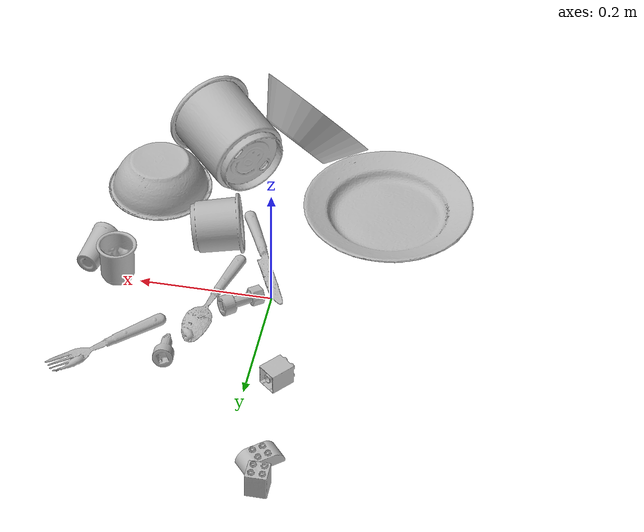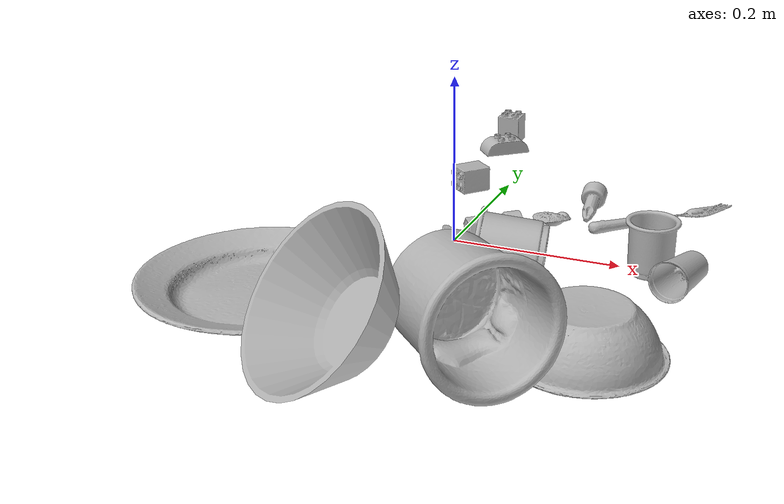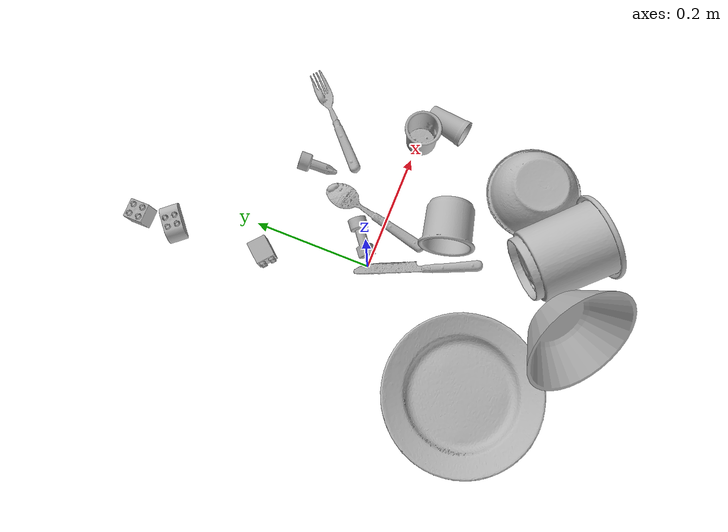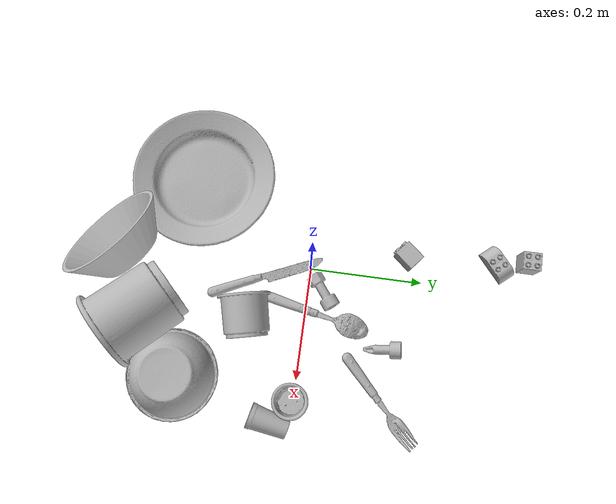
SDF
<sdf version="1.4">
  <world name="default">
    <light name="light1" type="point">
      <pose>0 0 1 0 0 0</pose>
      <diffuse>3 3 3 1</diffuse>
      <specular>3 3 3 1</specular>
    </light>
    <light name="light2" type="point">
      <pose>0 0.5 2 0 0 0</pose>
      <diffuse>1 1 1 1</diffuse>
      <specular>1 1 1 1</specular>
    </light>
    <light name="light3" type="point">
      <pose>0 0.5 2 0 0 0</pose>
      <diffuse>3 3 3 1</diffuse>
      <specular>3 3 3 1</specular>
    </light>
    <scene>
      <ambient>0.7 0.7 0.7</ambient>
    </scene>
    <model name="plate1">
      <link name="link_plate1">
        <collision name="default">
          <geometry>
            <mesh>
              <uri>model://plate/collision_meshes/collision.obj</uri>
              <scale>1.0 1.0 1.0</scale>
            </mesh>
          </geometry>
          <surface>
            <friction>
              <ode>
                <mu>0.5</mu>
                <mu2>0.5</mu2>
              </ode>
            </friction>
          <contact>
        <ode>
            <max_vel>0</max_vel>
            <min_depth>0.0001</min_depth>
            <kp>1e8</kp>
        </ode>
    </contact></surface>
        </collision>
        <visual name="default">
          <geometry>
            <mesh>
              <uri>model://plate/visual_meshes/visual.dae</uri>
              <scale>1.0 1.0 1.0</scale>
            </mesh>
          </geometry>
        </visual>
        <inertial>
          <mass>0.188415065407753</mass>
          <pose>-0.0006044681649655104 0.0002782578521873802 -0.0010561991948634386 0.0022187970116661695 -0.0032254679619122127 0.4526056514331616</pose>
          <inertia>
            <ixx>0.00088140933</ixx>
            <iyy>0.000872979</iyy>
            <izz>0.0017239053</izz>
            <ixy>0</ixy>
            <ixz>0</ixz>
            <iyz>0</iyz>
          </inertia>
        </inertial>
      </link>
      <pose>-0.13903482258319855 -0.21701329946517944 0.013733014464378357 -2.660520522294981e-07 -4.11367360031303e-09 1.2214281183978781</pose>
    </model>
    <model name="cup1">
      <link name="link_cup1">
        <collision name="default">
          <geometry>
            <mesh>
              <uri>model://d_cups/collision_meshes/collision.obj</uri>
              <scale>2.0 2.0 2.0</scale>
            </mesh>
          </geometry>
          <surface>
            <friction>
              <ode>
                <mu>0.5</mu>
                <mu2>0.5</mu2>
              </ode>
            </friction>
          <contact>
        <ode>
            <max_vel>0</max_vel>
            <min_depth>0.0001</min_depth>
            <kp>1e8</kp>
        </ode>
    </contact></surface>
        </collision>
        <visual name="default">
          <geometry>
            <mesh>
              <uri>model://d_cups/visual_meshes/visual.dae</uri>
              <scale>2.0 2.0 2.0</scale>
            </mesh>
          </geometry>
        </visual>
        <inertial>
          <mass>0.39843064546585083</mass>
          <pose>0.0016136104241013527 0.0038234808016568422 -0.004533304367214441 0.24012134810188138 -0.24709791903716813 0.5942561701250738</pose>
          <inertia>
            <ixx>0.0013343208</ixx>
            <iyy>0.001330459</iyy>
            <izz>0.001207787</izz>
            <ixy>0</ixy>
            <ixz>0</ixz>
            <iyz>0</iyz>
          </inertia>
        </inertial>
      </link>
      <pose>0.12071606516838074 -0.2797935903072357 0.065165214240551 -1.4735919056179374 0.2041779603224549 -2.3522221242902552</pose>
    </model>
    <model name="silverware1">
      <link name="link_silverware1">
        <collision name="default">
          <geometry>
            <mesh>
              <uri>model://knife/collision_meshes/collision.obj</uri>
              <scale>1.0 1.0 1.0</scale>
            </mesh>
          </geometry>
          <surface>
            <friction>
              <ode>
                <mu>0.5</mu>
                <mu2>0.5</mu2>
              </ode>
            </friction>
          <contact>
        <ode>
            <max_vel>0</max_vel>
            <min_depth>0.0001</min_depth>
            <kp>1e8</kp>
        </ode>
    </contact></surface>
        </collision>
        <visual name="default">
          <geometry>
            <mesh>
              <uri>model://knife/visual_meshes/visual.dae</uri>
              <scale>1.0 1.0 1.0</scale>
            </mesh>
          </geometry>
        </visual>
        <inertial>
          <mass>0.027211036533117294</mass>
          <pose>-0.02378525771200657 0.0015275125624611974 5.062023410573602e-05 0.0730549860308878 0.01724841828598218 -0.007409817457274567</pose>
          <inertia>
            <ixx>7.723595e-07</ixx>
            <iyy>0.000104540384</iyy>
            <izz>0.00010478913</izz>
            <ixy>0</ixy>
            <ixz>0</ixz>
            <iyz>0</iyz>
          </inertia>
        </inertial>
      </link>
      <pose>0.028284739702939987 -0.0784861296415329 0.007946611382067204 -0.02388006309794294 -0.014542830530056072 1.9867194728653574</pose>
    </model>
    <model name="silverware2">
      <link name="link_silverware2">
        <collision name="default">
          <geometry>
            <mesh>
              <uri>model://fork/collision_meshes/collision.obj</uri>
              <scale>1.0 1.0 1.0</scale>
            </mesh>
          </geometry>
          <surface>
            <friction>
              <ode>
                <mu>0.5</mu>
                <mu2>0.5</mu2>
              </ode>
            </friction>
          <contact>
        <ode>
            <max_vel>0</max_vel>
            <min_depth>0.0001</min_depth>
            <kp>1e8</kp>
        </ode>
    </contact></surface>
        </collision>
        <visual name="default">
          <geometry>
            <mesh>
              <uri>model://fork/visual_meshes/visual.dae</uri>
              <scale>1.0 1.0 1.0</scale>
            </mesh>
          </geometry>
        </visual>
        <inertial>
          <mass>0.01567319966852665</mass>
          <pose>-0.029570044949650764 0.00046588233090005815 0.0003218860656488687 -0.013551693849150472 -0.010977837004960822 0.014453899894816049</pose>
          <inertia>
            <ixx>5.494343e-07</ixx>
            <iyy>4.0918225e-05</iyy>
            <izz>4.1163967e-05</izz>
            <ixy>0</ixy>
            <ixz>0</ixz>
            <iyz>0</iyz>
          </inertia>
        </inertial>
      </link>
      <pose>0.21538907289505005 0.14537551999092102 0.0056793345138430595 -0.17284992149180892 0.02619500162868441 0.7568297845576949</pose>
    </model>
    <model name="silverware3">
      <link name="link_silverware3">
        <collision name="default">
          <geometry>
            <mesh>
              <uri>model://spoon/collision_meshes/collision.obj</uri>
              <scale>1.0 1.0 1.0</scale>
            </mesh>
          </geometry>
          <surface>
            <friction>
              <ode>
                <mu>0.5</mu>
                <mu2>0.5</mu2>
              </ode>
            </friction>
          <contact>
        <ode>
            <max_vel>0</max_vel>
            <min_depth>0.0001</min_depth>
            <kp>1e8</kp>
        </ode>
    </contact></surface>
        </collision>
        <visual name="default">
          <geometry>
            <mesh>
              <uri>model://spoon/visual_meshes/visual.dae</uri>
              <scale>1.0 1.0 1.0</scale>
            </mesh>
          </geometry>
        </visual>
        <inertial>
          <mass>0.020675545558333397</mass>
          <pose>-0.0055263228714466095 -0.001603417913429439 -0.0007271659560501575 0.03521671071703309 -0.03906584129558259 0.006150610048623938</pose>
          <inertia>
            <ixx>1.1500075e-06</ixx>
            <iyy>7.866978e-05</iyy>
            <izz>7.923691e-05</izz>
            <ixy>0</ixy>
            <ixz>0</ixz>
            <iyz>0</iyz>
          </inertia>
        </inertial>
      </link>
      <pose>0.08307366073131561 0.019926058128476143 0.010133714415133 3.1049538430640062 -0.0619772519163186 1.3555347148853112</pose>
    </model>
    <model name="cup3">
      <link name="link_cup3">
        <collision name="default">
          <geometry>
            <mesh>
              <uri>model://h_cups/collision_meshes/collision.obj</uri>
              <scale>1.0 1.0 1.0</scale>
            </mesh>
          </geometry>
          <surface>
            <friction>
              <ode>
                <mu>0.5</mu>
                <mu2>0.5</mu2>
              </ode>
            </friction>
          <contact>
        <ode>
            <max_vel>0</max_vel>
            <min_depth>0.0001</min_depth>
            <kp>1e8</kp>
        </ode>
    </contact></surface>
        </collision>
        <visual name="default">
          <geometry>
            <mesh>
              <uri>model://h_cups/visual_meshes/visual.dae</uri>
              <scale>1.0 1.0 1.0</scale>
            </mesh>
          </geometry>
        </visual>
        <inertial>
          <mass>0.08491484075784683</mass>
          <pose>-2.702520214370452e-05 0.00023018663341645151 -0.0018405397422611713 -0.02436220805872295 0.06545280106490914 0.1288526015338695</pose>
          <inertia>
            <ixx>0.000109663546</ixx>
            <iyy>0.00010835491</iyy>
            <izz>0.00011500697</izz>
            <ixy>0</ixy>
            <ixz>0</ixz>
            <iyz>0</iyz>
          </inertia>
        </inertial>
      </link>
      <pose>0.10341189056634903 -0.0999487116932869 0.042074188590049744 1.2618818013994273 -1.237860298753406 -1.0565489011731843</pose>
    </model>
    <model name="cup4">
      <link name="link_cup4">
        <collision name="default">
          <geometry>
            <mesh>
              <uri>model://cup_small/collision_meshes/collision.obj</uri>
              <scale>1.0 1.0 1.0</scale>
            </mesh>
          </geometry>
          <surface>
            <friction>
              <ode>
                <mu>0.5</mu>
                <mu2>0.5</mu2>
              </ode>
            </friction>
          <contact>
        <ode>
            <max_vel>0</max_vel>
            <min_depth>0.0001</min_depth>
            <kp>1e8</kp>
        </ode>
    </contact></surface>
        </collision>
        <visual name="default">
          <geometry>
            <mesh>
              <uri>model://cup_small/visual_meshes/visual.dae</uri>
              <scale>1.0 1.0 1.0</scale>
            </mesh>
          </geometry>
        </visual>
        <inertial>
          <mass>0.024220753461122513</mass>
          <pose>0.00010482438665349036 -0.00033778438228182495 -0.010742821730673313 -0.011493274197159384 -0.01528013747447056 -0.5058088438882253</pose>
          <inertia>
            <ixx>1.4260815e-05</ixx>
            <iyy>1.433438e-05</iyy>
            <izz>6.4388e-06</izz>
            <ixy>0</ixy>
            <ixz>0</ixz>
            <iyz>0</iyz>
          </inertia>
        </inertial>
      </link>
      <pose>0.2755064070224762 -0.03659597039222717 0.020275844261050224 1.3377157214401156 -1.2100970653042318 -0.0022733869336126664</pose>
    </model>
    <model name="cup5">
      <link name="link_cup5">
        <collision name="default">
          <geometry>
            <mesh>
              <uri>model://b_cups/collision_meshes/collision.obj</uri>
              <scale>1.0 1.0 1.0</scale>
            </mesh>
          </geometry>
          <surface>
            <friction>
              <ode>
                <mu>0.5</mu>
                <mu2>0.5</mu2>
              </ode>
            </friction>
          <contact>
        <ode>
            <max_vel>0</max_vel>
            <min_depth>0.0001</min_depth>
            <kp>1e8</kp>
        </ode>
    </contact></surface>
        </collision>
        <visual name="default">
          <geometry>
            <mesh>
              <uri>model://b_cups/visual_meshes/visual.dae</uri>
              <scale>1.0 1.0 1.0</scale>
            </mesh>
          </geometry>
        </visual>
        <inertial>
          <mass>0.049698356539011</mass>
          <pose>0.0005182003951631486 0.0018058595014736056 -0.0013381819007918239 0.1135633586286738 0.03872473724046268 -0.3456911343663658</pose>
          <inertia>
            <ixx>3.2531058e-05</ixx>
            <iyy>3.1913434e-05</iyy>
            <izz>2.7374275e-05</izz>
            <ixy>0</ixy>
            <ixz>0</ixz>
            <iyz>0</iyz>
          </inertia>
        </inertial>
      </link>
      <pose>0.23579809069633484 -0.003960627131164074 0.03199608623981476 -0.0076292296897012115 -0.0038289583140649875 2.8627571078451233</pose>
    </model>
    <model name="bowl1">
      <link name="link_bowl1">
        <collision name="default">
          <geometry>
            <mesh>
              <uri>model://bowl/collision_meshes/collision.obj</uri>
              <scale>1.0 1.0 1.0</scale>
            </mesh>
          </geometry>
          <surface>
            <friction>
              <ode>
                <mu>0.5</mu>
                <mu2>0.5</mu2>
              </ode>
            </friction>
          <contact>
        <ode>
            <max_vel>0</max_vel>
            <min_depth>0.0001</min_depth>
            <kp>1e8</kp>
        </ode>
    </contact></surface>
        </collision>
        <visual name="default">
          <geometry>
            <mesh>
              <uri>model://bowl/visual_meshes/visual.dae</uri>
              <scale>1.0 1.0 1.0</scale>
            </mesh>
          </geometry>
        </visual>
        <inertial>
          <mass>0.10713337361812592</mass>
          <pose>0.00020444899564608932 -0.001030207029543817 -0.0008042642148211598 -0.015763984617069283 0.014546905390658569 0.7140476331316008</pose>
          <inertia>
            <ixx>0.0002460938</ixx>
            <iyy>0.00024059511</iyy>
            <izz>0.00041401442</izz>
            <ixy>0</ixy>
            <ixz>0</ixz>
            <iyz>0</iyz>
          </inertia>
        </inertial>
      </link>
      <pose>0.2197565734386444 -0.2159384787082672 0.02724696509540081 -3.132750611148663 0.0006783451626592231 -0.08744152814285669</pose>
    </model>
    <model name="bowl2">
      <link name="link_bowl2">
        <collision name="default">
          <geometry>
            <mesh>
              <uri>model://bowl_a/collision_meshes/collision.obj</uri>
              <scale>1.0 1.0 1.0</scale>
            </mesh>
          </geometry>
          <surface>
            <friction>
              <ode>
                <mu>0.5</mu>
                <mu2>0.5</mu2>
              </ode>
            </friction>
          <contact>
        <ode>
            <max_vel>0</max_vel>
            <min_depth>0.0001</min_depth>
            <kp>1e8</kp>
        </ode>
    </contact></surface>
        </collision>
        <visual name="default">
          <geometry>
            <mesh>
              <uri>model://bowl_a/visual_meshes/visual.dae</uri>
              <scale>1.0 1.0 1.0</scale>
            </mesh>
          </geometry>
        </visual>
        <inertial>
          <mass>0.5226007103919983</mass>
          <pose>0.00027867400785908103 4.731409717351198e-05 -0.0013765293406322598 -0.0009805372975616423 -0.0010938241101444716 -0.19123543414166835</pose>
          <inertia>
            <ixx>0.0014878683</ixx>
            <iyy>0.0014970028</iyy>
            <izz>0.0026462309</izz>
            <ixy>0</ixy>
            <ixz>0</ixz>
            <iyz>0</iyz>
          </inertia>
        </inertial>
      </link>
      <pose>0.010964314453303814 -0.33047300577163696 0.06335043907165527 0.8028358928799662 0.49458982748435343 -1.1042248475219418</pose>
    </model>
    <model name="toy1">
      <link name="link_toy1">
        <collision name="default">
          <geometry>
            <mesh>
              <uri>model://f_lego_duplo/collision_meshes/collision.obj</uri>
              <scale>1.0 1.0 1.0</scale>
            </mesh>
          </geometry>
          <surface>
            <friction>
              <ode>
                <mu>0.5</mu>
                <mu2>0.5</mu2>
              </ode>
            </friction>
          <contact>
        <ode>
            <max_vel>0</max_vel>
            <min_depth>0.0001</min_depth>
            <kp>1e8</kp>
        </ode>
    </contact></surface>
        </collision>
        <visual name="default">
          <geometry>
            <mesh>
              <uri>model://f_lego_duplo/visual_meshes/visual.dae</uri>
              <scale>1.0 1.0 1.0</scale>
            </mesh>
          </geometry>
        </visual>
        <inertial>
          <mass>0.04674473777413368</mass>
          <pose>2.3694283299846575e-05 0.00013393160770647228 0.0018837876850739121 0.029838743240884653 -0.014424615896258132 -0.6756775311218791</pose>
          <inertia>
            <ixx>9.877422e-06</ixx>
            <iyy>9.965418e-06</iyy>
            <izz>8.57402e-06</izz>
            <ixy>0</ixy>
            <ixz>0</ixz>
            <iyz>0</iyz>
          </inertia>
        </inertial>
      </link>
      <pose>-0.058908410370349884 0.3833310902118683 0.02187100052833557 2.0233827263798598e-06 3.1780456970014255e-06 1.5734919679457684</pose>
    </model>
    <model name="toy2">
      <link name="link_toy2">
        <collision name="default">
          <geometry>
            <mesh>
              <uri>model://b_lego_duplo/collision_meshes/collision.obj</uri>
              <scale>1.0 1.0 1.0</scale>
            </mesh>
          </geometry>
          <surface>
            <friction>
              <ode>
                <mu>0.5</mu>
                <mu2>0.5</mu2>
              </ode>
            </friction>
          <contact>
        <ode>
            <max_vel>0</max_vel>
            <min_depth>0.0001</min_depth>
            <kp>1e8</kp>
        </ode>
    </contact></surface>
        </collision>
        <visual name="default">
          <geometry>
            <mesh>
              <uri>model://b_lego_duplo/visual_meshes/visual.dae</uri>
              <scale>1.0 1.0 1.0</scale>
            </mesh>
          </geometry>
        </visual>
        <inertial>
          <mass>0.046308279037475586</mass>
          <pose>-0.00011053026537410915 -9.152292477665469e-06 0.001929429010488093 -0.03749474318211287 -0.02635425030857695 0.451892682452606</pose>
          <inertia>
            <ixx>9.477338e-06</ixx>
            <iyy>9.541048e-06</iyy>
            <izz>8.443999e-06</izz>
            <ixy>0</ixy>
            <ixz>0</ixz>
            <iyz>0</iyz>
          </inertia>
        </inertial>
      </link>
      <pose>-0.04399275779724121 0.16866831481456757 0.01618008315563202 0.04888556821463782 -1.5624169495410885 0.8236199182837929</pose>
    </model>
    <model name="toy3">
      <link name="link_toy3">
        <collision name="default">
          <geometry>
            <mesh>
              <uri>model://c_toy_airplane/collision_meshes/collision.obj</uri>
              <scale>1.0 1.0 1.0</scale>
            </mesh>
          </geometry>
          <surface>
            <friction>
              <ode>
                <mu>0.5</mu>
                <mu2>0.5</mu2>
              </ode>
            </friction>
          <contact>
        <ode>
            <max_vel>0</max_vel>
            <min_depth>0.0001</min_depth>
            <kp>1e8</kp>
        </ode>
    </contact></surface>
        </collision>
        <visual name="default">
          <geometry>
            <mesh>
              <uri>model://c_toy_airplane/visual_meshes/visual.dae</uri>
              <scale>1.0 1.0 1.0</scale>
            </mesh>
          </geometry>
        </visual>
        <inertial>
          <mass>0.03609102964401245</mass>
          <pose>-0.00023024271649774164 -4.429565194641327e-07 -0.006080531980842352 -0.006192551548155338 -0.01679780015794874 0.7654806130326979</pose>
          <inertia>
            <ixx>1.6572261e-05</ixx>
            <iyy>1.6525488e-05</iyy>
            <izz>3.890839e-06</izz>
            <ixy>0</ixy>
            <ixz>0</ixz>
            <iyz>0</iyz>
          </inertia>
        </inertial>
      </link>
      <pose>0.04009570926427841 0.026247940957546234 0.014692852273583412 1.589495474935916 -0.09926688190944447 -0.9092340123343421</pose>
    </model>
    <model name="toy4">
      <link name="link_toy4">
        <collision name="default">
          <geometry>
            <mesh>
              <uri>model://d_toy_airplane/collision_meshes/collision.obj</uri>
              <scale>1.0 1.0 1.0</scale>
            </mesh>
          </geometry>
          <surface>
            <friction>
              <ode>
                <mu>0.5</mu>
                <mu2>0.5</mu2>
              </ode>
            </friction>
          <contact>
        <ode>
            <max_vel>0</max_vel>
            <min_depth>0.0001</min_depth>
            <kp>1e8</kp>
        </ode>
    </contact></surface>
        </collision>
        <visual name="default">
          <geometry>
            <mesh>
              <uri>model://d_toy_airplane/visual_meshes/visual.dae</uri>
              <scale>1.0 1.0 1.0</scale>
            </mesh>
          </geometry>
        </visual>
        <inertial>
          <mass>0.017463792115449905</mass>
          <pose>9.410289203515276e-05 -5.80932101001963e-05 -0.011728095822036266 0.00026611357398368453 0.004679028940218743 0.5192826772494831</pose>
          <inertia>
            <ixx>5.2353053e-06</ixx>
            <iyy>5.239254e-06</iyy>
            <izz>1.5805728e-06</izz>
            <ixy>0</ixy>
            <ixz>0</ixz>
            <iyz>0</iyz>
          </inertia>
        </inertial>
      </link>
      <pose>0.12825003266334534 0.14219507575035095 0.01136123575270176 -2.301799253039476 1.247619125268192 2.530516241415626</pose>
    </model>
    <model name="toy5">
      <link name="link_toy5">
        <collision name="default">
          <geometry>
            <mesh>
              <uri>model://a_lego_duplo/collision_meshes/collision.obj</uri>
              <scale>1.0 1.0 1.0</scale>
            </mesh>
          </geometry>
          <surface>
            <friction>
              <ode>
                <mu>0.5</mu>
                <mu2>0.5</mu2>
              </ode>
            </friction>
          <contact>
        <ode>
            <max_vel>0</max_vel>
            <min_depth>0.0001</min_depth>
            <kp>1e8</kp>
        </ode>
    </contact></surface>
        </collision>
        <visual name="default">
          <geometry>
            <mesh>
              <uri>model://a_lego_duplo/visual_meshes/visual.dae</uri>
              <scale>1.0 1.0 1.0</scale>
            </mesh>
          </geometry>
        </visual>
        <inertial>
          <mass>0.016317613422870636</mass>
          <pose>-0.00011337783507769927 0.00018517576972953975 0.00036926058237440884 -0.01411698761390393 -0.0001256633936569927 6.142942133676727e-05</pose>
          <inertia>
            <ixx>2.0920475e-06</ixx>
            <iyy>4.6866458e-06</iyy>
            <izz>5.8054516e-06</izz>
            <ixy>0</ixy>
            <ixz>0</ixz>
            <iyz>0</iyz>
          </inertia>
        </inertial>
      </link>
      <pose>-0.051502905786037445 0.33076995611190796 0.01211200188845396 -4.891240476323452e-08 -3.9028188506743904e-08 0.7075086881732408</pose>
    </model>
  <physics type="ode">
      <max_contacts>50</max_contacts>
      <ode>
        <solver>
          <type>quick</type>
          <iters>75</iters>
        </solver>
        <constraints>
          <contact_max_correcting_vel>0</contact_max_correcting_vel>
          <contact_surface_layer>0</contact_surface_layer>
        </constraints>
      </ode>
    </physics></world>
</sdf>
